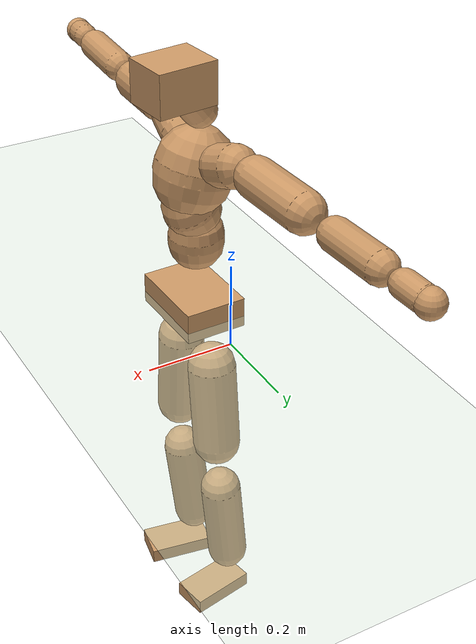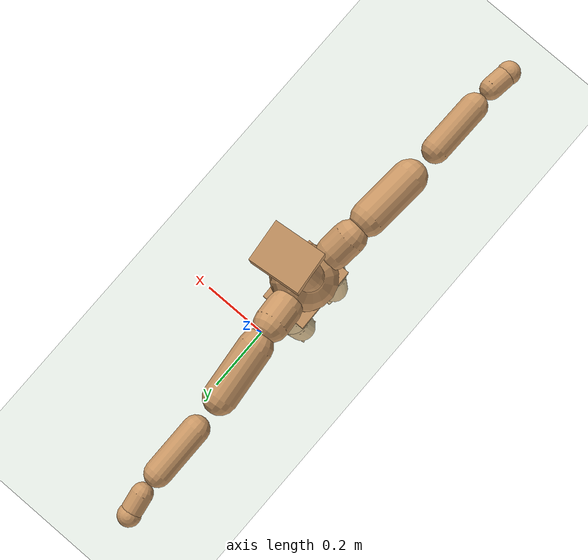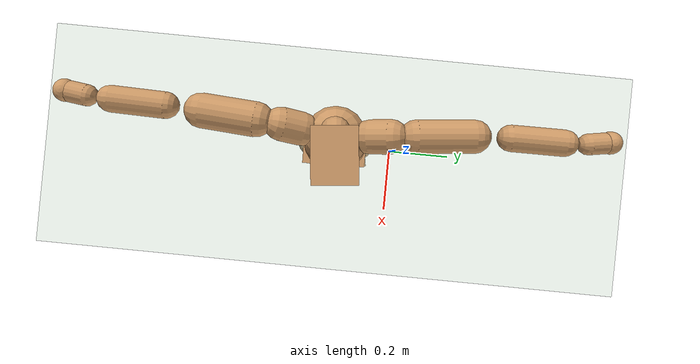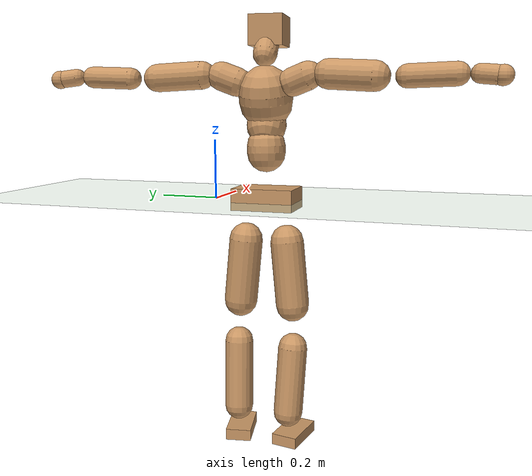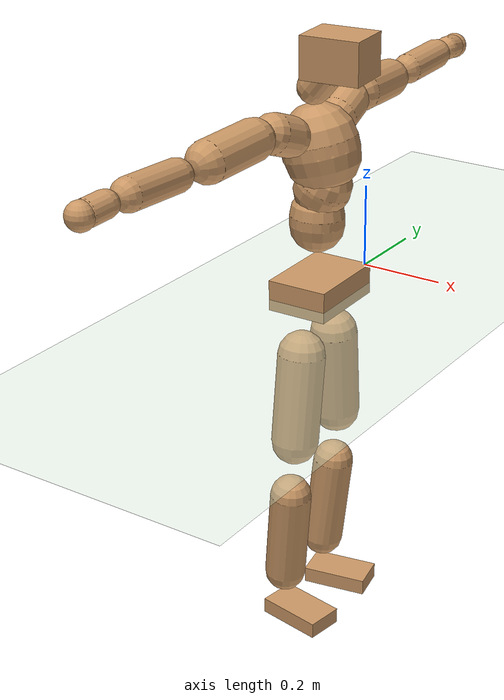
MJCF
<mujoco model="humanoid">
  <compiler coordinate="local" angle="radian"/>
  <default>
    <joint damping="0.0" armature="0.01" stiffness="0.0" limited="true"/>
    <geom conaffinity="1" condim="3" contype="7" margin="0.001" rgba="0.8 0.6 .4 1"/>
  </default>
  <asset>
    <texture type="skybox" builtin="gradient" rgb1=".4 .5 .6" rgb2="0 0 0" width="100" height="100"/>
    <texture builtin="flat" height="1278" mark="cross" markrgb="1 1 1" name="texgeom" random="0.01" rgb1="0.8 0.6 0.4" rgb2="0.8 0.6 0.4" type="cube" width="127"/>
    <texture builtin="checker" height="100" name="texplane" rgb1="0 0 0" rgb2="0.8 0.8 0.8" type="2d" width="100"/>
    <material name="MatPlane" reflectance="0.5" shininess="1" specular="1" texrepeat="60 60" texture="texplane"/>
    <material name="geom" texture="texgeom" texuniform="true"/>
  </asset>
  <worldbody>
    <light cutoff="100" diffuse="1 1 1" dir="-0 0 -1.3" directional="true" exponent="1" pos="0 0 1.3" specular=".1 .1 .1"/>
    <geom conaffinity="1" condim="3" name="floor" pos="0 0 0" rgba="0.8 0.9 0.8 1" size="100 100 .2" type="plane" material="MatPlane"/>
    <body name="Pelvis" pos="-0.0024 -0.188 0.0202">
      <freejoint name="Pelvis"/>
      <geom type="box" contype="1" conaffinity="1" density="500" pos="-0.0059 -0.0001 -0.0119" size="0.0731 0.104 0.0365" quat="0.9999 0.0000 0.0000 0.0112" name="Pelvis"/>
      <body name="L_Hip" pos="-0.0118 0.0664 -0.0836">
        <joint name="L_Hip_x" type="hinge" pos="0 0 0" axis="1 0 0" stiffness="800" damping="80" armature="0.02" range="-180.0000 180.0000"/>
        <joint name="L_Hip_y" type="hinge" pos="0 0 0" axis="0 1 0" stiffness="800" damping="80" armature="0.02" range="-180.0000 180.0000"/>
        <joint name="L_Hip_z" type="hinge" pos="0 0 0" axis="0 0 1" stiffness="800" damping="80" armature="0.02" range="-180.0000 180.0000"/>
        <geom type="capsule" contype="1" conaffinity="1" density="500" fromto="-0.0008 0.0063 -0.0722 -0.0031 0.0253 -0.2887" size="0.0569" name="L_Hip"/>
        <body name="L_Knee" pos="-0.0038 0.0316 -0.3608">
          <joint name="L_Knee_x" type="hinge" pos="0 0 0" axis="1 0 0" stiffness="800" damping="80" armature="0.02" range="-180.0000 180.0000"/>
          <joint name="L_Knee_y" type="hinge" pos="0 0 0" axis="0 1 0" stiffness="800" damping="80" armature="0.02" range="-180.0000 180.0000"/>
          <joint name="L_Knee_z" type="hinge" pos="0 0 0" axis="0 0 1" stiffness="800" damping="80" armature="0.02" range="-180.0000 180.0000"/>
          <geom type="capsule" contype="1" conaffinity="1" density="500" fromto="-0.0082 -0.0024 -0.0762 -0.0327 -0.0094 -0.3046" size="0.0493" name="L_Knee"/>
          <body name="L_Ankle" pos="-0.0409 -0.0118 -0.3808">
            <joint name="L_Ankle_x" type="hinge" pos="0 0 0" axis="1 0 0" stiffness="800" damping="80" armature="0.02" range="-180.0000 180.0000"/>
            <joint name="L_Ankle_y" type="hinge" pos="0 0 0" axis="0 1 0" stiffness="800" damping="80" armature="0.02" range="-180.0000 180.0000"/>
            <joint name="L_Ankle_z" type="hinge" pos="0 0 0" axis="0 0 1" stiffness="800" damping="80" armature="0.02" range="-180.0000 180.0000"/>
            <geom type="box" contype="1" conaffinity="1" density="500" pos="0.0556 0.0105 -0.0269" size="0.0793 0.0437 0.0194" quat="0.9956 0.0000 0.0000 0.0933" name="L_Ankle"/>
            <body name="L_Toe" pos="0.1112 0.021 -0.0537">
              <joint name="L_Toe_x" type="hinge" pos="0 0 0" axis="1 0 0" stiffness="500" damping="50" armature="0.02" range="-180.0000 180.0000"/>
              <joint name="L_Toe_y" type="hinge" pos="0 0 0" axis="0 1 0" stiffness="500" damping="50" armature="0.02" range="-180.0000 180.0000"/>
              <joint name="L_Toe_z" type="hinge" pos="0 0 0" axis="0 0 1" stiffness="500" damping="50" armature="0.02" range="-180.0000 180.0000"/>
              <geom type="box" contype="1" conaffinity="1" density="500" pos="0.0000 0.0000 0.0265" size="0.0009 0.0022 0.001" quat="0.9950 0.0000 0.0000 0.1001" name="L_Toe"/>
            </body>
          </body>
        </body>
      </body>
      <body name="R_Hip" pos="-0.0078 -0.0651 -0.0829">
        <joint name="R_Hip_x" type="hinge" pos="0 0 0" axis="1 0 0" stiffness="800" damping="80" armature="0.02" range="-180.0000 180.0000"/>
        <joint name="R_Hip_y" type="hinge" pos="0 0 0" axis="0 1 0" stiffness="800" damping="80" armature="0.02" range="-180.0000 180.0000"/>
        <joint name="R_Hip_z" type="hinge" pos="0 0 0" axis="0 0 1" stiffness="800" damping="80" armature="0.02" range="-180.0000 180.0000"/>
        <geom type="capsule" contype="1" conaffinity="1" density="500" fromto="-0.0013 -0.0075 -0.0733 -0.0051 -0.0299 -0.2932" size="0.0562" name="R_Hip"/>
        <body name="R_Knee" pos="-0.0064 -0.0374 -0.3665">
          <joint name="R_Knee_x" type="hinge" pos="0 0 0" axis="1 0 0" stiffness="800" damping="80" armature="0.02" range="-180.0000 180.0000"/>
          <joint name="R_Knee_y" type="hinge" pos="0 0 0" axis="0 1 0" stiffness="800" damping="80" armature="0.02" range="-180.0000 180.0000"/>
          <joint name="R_Knee_z" type="hinge" pos="0 0 0" axis="0 0 1" stiffness="800" damping="80" armature="0.02" range="-180.0000 180.0000"/>
          <geom type="capsule" contype="1" conaffinity="1" density="500" fromto="-0.0076 0.0029 -0.0760 -0.0305 0.0116 -0.3041" size="0.0496" name="R_Knee"/>
          <body name="R_Ankle" pos="-0.0381 0.0145 -0.3801">
            <joint name="R_Ankle_x" type="hinge" pos="0 0 0" axis="1 0 0" stiffness="800" damping="80" armature="0.02" range="-180.0000 180.0000"/>
            <joint name="R_Ankle_y" type="hinge" pos="0 0 0" axis="0 1 0" stiffness="800" damping="80" armature="0.02" range="-180.0000 180.0000"/>
            <joint name="R_Ankle_z" type="hinge" pos="0 0 0" axis="0 0 1" stiffness="800" damping="80" armature="0.02" range="-180.0000 180.0000"/>
            <geom type="box" contype="1" conaffinity="1" density="500" pos="0.0574 -0.0096 -0.0230" size="0.0807 0.0448 0.0192" quat="0.9966 0.0000 0.0000 -0.0826" name="R_Ankle"/>
            <body name="R_Toe" pos="0.1147 -0.0192 -0.046">
              <joint name="R_Toe_x" type="hinge" pos="0 0 0" axis="1 0 0" stiffness="500" damping="50" armature="0.02" range="-180.0000 180.0000"/>
              <joint name="R_Toe_y" type="hinge" pos="0 0 0" axis="0 1 0" stiffness="500" damping="50" armature="0.02" range="-180.0000 180.0000"/>
              <joint name="R_Toe_z" type="hinge" pos="0 0 0" axis="0 0 1" stiffness="500" damping="50" armature="0.02" range="-180.0000 180.0000"/>
              <geom type="box" contype="1" conaffinity="1" density="500" pos="0.0000 0.0000 0.0248" size="0.0009 0.0022 0.001" quat="0.9973 0.0000 0.0000 -0.0729" name="R_Toe"/>
            </body>
          </body>
        </body>
      </body>
      <body name="Torso" pos="-0.0155 -0.0021 0.0952">
        <joint name="Torso_x" type="hinge" pos="0 0 0" axis="1 0 0" stiffness="1000" damping="100" armature="0.02" range="-180.0000 180.0000"/>
        <joint name="Torso_y" type="hinge" pos="0 0 0" axis="0 1 0" stiffness="1000" damping="100" armature="0.02" range="-180.0000 180.0000"/>
        <joint name="Torso_z" type="hinge" pos="0 0 0" axis="0 0 1" stiffness="1000" damping="100" armature="0.02" range="-180.0000 180.0000"/>
        <geom type="capsule" contype="1" conaffinity="1" density="500" fromto="0.0013 0.0020 0.0691 0.0009 0.0014 0.0461" size="0.0642" name="Torso"/>
        <body name="Spine" pos="0.0022 0.0034 0.1152">
          <joint name="Spine_x" type="hinge" pos="0 0 0" axis="1 0 0" stiffness="1000" damping="100" armature="0.02" range="-180.0000 180.0000"/>
          <joint name="Spine_y" type="hinge" pos="0 0 0" axis="0 1 0" stiffness="1000" damping="100" armature="0.02" range="-180.0000 180.0000"/>
          <joint name="Spine_z" type="hinge" pos="0 0 0" axis="0 0 1" stiffness="1000" damping="100" armature="0.02" range="-180.0000 180.0000"/>
          <geom type="capsule" contype="1" conaffinity="1" density="500" fromto="0.0139 0.0017 0.0269 0.0093 0.0011 0.0179" size="0.066" name="Spine"/>
          <body name="Chest" pos="0.0232 0.0028 0.0448">
            <joint name="Chest_x" type="hinge" pos="0 0 0" axis="1 0 0" stiffness="1000" damping="100" armature="0.02" range="-180.0000 180.0000"/>
            <joint name="Chest_y" type="hinge" pos="0 0 0" axis="0 1 0" stiffness="1000" damping="100" armature="0.02" range="-180.0000 180.0000"/>
            <joint name="Chest_z" type="hinge" pos="0 0 0" axis="0 0 1" stiffness="1000" damping="100" armature="0.02" range="-180.0000 180.0000"/>
            <geom type="capsule" contype="1" conaffinity="1" density="500" fromto="-0.0221 -0.0010 0.0823 -0.0148 -0.0007 0.0549" size="0.0893" name="Chest"/>
            <body name="Neck" pos="-0.0439 -0.0032 0.1929">
              <joint name="Neck_x" type="hinge" pos="0 0 0" axis="1 0 0" stiffness="500" damping="50" armature="0.02" range="-180.0000 180.0000"/>
              <joint name="Neck_y" type="hinge" pos="0 0 0" axis="0 1 0" stiffness="500" damping="50" armature="0.02" range="-180.0000 180.0000"/>
              <joint name="Neck_z" type="hinge" pos="0 0 0" axis="0 0 1" stiffness="500" damping="50" armature="0.02" range="-180.0000 180.0000"/>
              <geom type="capsule" contype="1" conaffinity="1" density="500" fromto="0.0093 0.0006 0.0118 0.0374 0.0025 0.0471" size="0.0397" name="Neck"/>
              <body name="Head" pos="0.0467 0.0031 0.0589">
                <joint name="Head_x" type="hinge" pos="0 0 0" axis="1 0 0" stiffness="500" damping="50" armature="0.02" range="-180.0000 180.0000"/>
                <joint name="Head_y" type="hinge" pos="0 0 0" axis="0 1 0" stiffness="500" damping="50" armature="0.02" range="-180.0000 180.0000"/>
                <joint name="Head_z" type="hinge" pos="0 0 0" axis="0 0 1" stiffness="500" damping="50" armature="0.02" range="-180.0000 180.0000"/>
                <geom type="box" contype="1" conaffinity="1" density="500" pos="0.0244 0.0026 0.0304" size="0.0704 0.0567 0.0492" quat="0.9986 0.0000 0.0000 0.0524" name="Head"/>
              </body>
            </body>
            <body name="L_Thorax" pos="-0.0319 0.0758 0.1103">
              <joint name="L_Thorax_x" type="hinge" pos="0 0 0" axis="1 0 0" stiffness="500" damping="50" armature="0.02" range="-180.0000 180.0000"/>
              <joint name="L_Thorax_y" type="hinge" pos="0 0 0" axis="0 1 0" stiffness="500" damping="50" armature="0.02" range="-180.0000 180.0000"/>
              <joint name="L_Thorax_z" type="hinge" pos="0 0 0" axis="0 0 1" stiffness="500" damping="50" armature="0.02" range="-180.0000 180.0000"/>
              <geom type="capsule" contype="1" conaffinity="1" density="500" fromto="-0.0016 0.0176 0.0065 -0.0063 0.0705 0.0261" size="0.0478" name="L_Thorax"/>
              <body name="L_Shoulder" pos="-0.0079 0.0881 0.0326">
                <joint name="L_Shoulder_x" type="hinge" pos="0 0 0" axis="1 0 0" stiffness="500" damping="50" armature="0.02" range="-720.0000 720.0000"/>
                <joint name="L_Shoulder_y" type="hinge" pos="0 0 0" axis="0 1 0" stiffness="500" damping="50" armature="0.02" range="-720.0000 720.0000"/>
                <joint name="L_Shoulder_z" type="hinge" pos="0 0 0" axis="0 0 1" stiffness="500" damping="50" armature="0.02" range="-720.0000 720.0000"/>
                <geom type="capsule" contype="1" conaffinity="1" density="500" fromto="-0.0052 0.0515 -0.0027 -0.0208 0.2059 -0.0110" size="0.0465" name="L_Shoulder"/>
                <body name="L_Elbow" pos="-0.026 0.2573 -0.0137">
                  <joint name="L_Elbow_x" type="hinge" pos="0 0 0" axis="1 0 0" stiffness="500" damping="50" armature="0.02" range="-720.0000 720.0000"/>
                  <joint name="L_Elbow_y" type="hinge" pos="0 0 0" axis="0 1 0" stiffness="500" damping="50" armature="0.02" range="-720.0000 720.0000"/>
                  <joint name="L_Elbow_z" type="hinge" pos="0 0 0" axis="0 0 1" stiffness="500" damping="50" armature="0.02" range="-720.0000 720.0000"/>
                  <geom type="capsule" contype="1" conaffinity="1" density="500" fromto="-0.0002 0.0480 0.0019 -0.0009 0.1919 0.0074" size="0.0365" name="L_Elbow"/>
                  <body name="L_Wrist" pos="-0.0012 0.2399 0.0093">
                    <joint name="L_Wrist_x" type="hinge" pos="0 0 0" axis="1 0 0" stiffness="300" damping="30" armature="0.02" range="-180.0000 180.0000"/>
                    <joint name="L_Wrist_y" type="hinge" pos="0 0 0" axis="0 1 0" stiffness="300" damping="30" armature="0.02" range="-180.0000 180.0000"/>
                    <joint name="L_Wrist_z" type="hinge" pos="0 0 0" axis="0 0 1" stiffness="300" damping="30" armature="0.02" range="-180.0000 180.0000"/>
                    <geom type="capsule" contype="1" conaffinity="1" density="500" fromto="-0.0026 0.0156 -0.0019 -0.0103 0.0622 -0.0077" size="0.0291" name="L_Wrist"/>
                    <body name="L_Hand" pos="-0.0129 0.0778 -0.0096">
                      <joint name="L_Hand_x" type="hinge" pos="0 0 0" axis="1 0 0" stiffness="300" damping="30" armature="0.02" range="-180.0000 180.0000"/>
                      <joint name="L_Hand_y" type="hinge" pos="0 0 0" axis="0 1 0" stiffness="300" damping="30" armature="0.02" range="-180.0000 180.0000"/>
                      <joint name="L_Hand_z" type="hinge" pos="0 0 0" axis="0 0 1" stiffness="300" damping="30" armature="0.02" range="-180.0000 180.0000"/>
                      <geom type="sphere" contype="1" conaffinity="1" density="500" size="0.0312" pos="0.0000 0.0000 0.0000" name="L_Hand"/>
                    </body>
                  </body>
                </body>
              </body>
            </body>
            <body name="R_Thorax" pos="-0.035 -0.0777 0.1083">
              <joint name="R_Thorax_x" type="hinge" pos="0 0 0" axis="1 0 0" stiffness="500" damping="50" armature="0.02" range="-180.0000 180.0000"/>
              <joint name="R_Thorax_y" type="hinge" pos="0 0 0" axis="0 1 0" stiffness="500" damping="50" armature="0.02" range="-180.0000 180.0000"/>
              <joint name="R_Thorax_z" type="hinge" pos="0 0 0" axis="0 0 1" stiffness="500" damping="50" armature="0.02" range="-180.0000 180.0000"/>
              <geom type="capsule" contype="1" conaffinity="1" density="500" fromto="-0.0022 -0.0181 0.0068 -0.0087 -0.0722 0.0271" size="0.0465" name="R_Thorax"/>
              <body name="R_Shoulder" pos="-0.0108 -0.0903 0.0339">
                <joint name="R_Shoulder_x" type="hinge" pos="0 0 0" axis="1 0 0" stiffness="500" damping="50" armature="0.02" range="-720.0000 720.0000"/>
                <joint name="R_Shoulder_y" type="hinge" pos="0 0 0" axis="0 1 0" stiffness="500" damping="50" armature="0.02" range="-720.0000 720.0000"/>
                <joint name="R_Shoulder_z" type="hinge" pos="0 0 0" axis="0 0 1" stiffness="500" damping="50" armature="0.02" range="-720.0000 720.0000"/>
                <geom type="capsule" contype="1" conaffinity="1" density="500" fromto="-0.0034 -0.0496 -0.0028 -0.0136 -0.1982 -0.0111" size="0.0481" name="R_Shoulder"/>
                <body name="R_Elbow" pos="-0.017 -0.2478 -0.0139">
                  <joint name="R_Elbow_x" type="hinge" pos="0 0 0" axis="1 0 0" stiffness="500" damping="50" armature="0.02" range="-720.0000 720.0000"/>
                  <joint name="R_Elbow_y" type="hinge" pos="0 0 0" axis="0 1 0" stiffness="500" damping="50" armature="0.02" range="-720.0000 720.0000"/>
                  <joint name="R_Elbow_z" type="hinge" pos="0 0 0" axis="0 0 1" stiffness="500" damping="50" armature="0.02" range="-720.0000 720.0000"/>
                  <geom type="capsule" contype="1" conaffinity="1" density="500" fromto="-0.0009 -0.0491 0.0016 -0.0038 -0.1963 0.0063" size="0.0367" name="R_Elbow"/>
                  <body name="R_Wrist" pos="-0.0047 -0.2454 0.0078">
                    <joint name="R_Wrist_x" type="hinge" pos="0 0 0" axis="1 0 0" stiffness="300" damping="30" armature="0.02" range="-180.0000 180.0000"/>
                    <joint name="R_Wrist_y" type="hinge" pos="0 0 0" axis="0 1 0" stiffness="300" damping="30" armature="0.02" range="-180.0000 180.0000"/>
                    <joint name="R_Wrist_z" type="hinge" pos="0 0 0" axis="0 0 1" stiffness="300" damping="30" armature="0.02" range="-180.0000 180.0000"/>
                    <geom type="capsule" contype="1" conaffinity="1" density="500" fromto="-0.0020 -0.0157 -0.0015 -0.0081 -0.0626 -0.0058" size="0.0297" name="R_Wrist"/>
                    <body name="R_Hand" pos="-0.0101 -0.0783 -0.0073">
                      <joint name="R_Hand_x" type="hinge" pos="0 0 0" axis="1 0 0" stiffness="300" damping="30" armature="0.02" range="-180.0000 180.0000"/>
                      <joint name="R_Hand_y" type="hinge" pos="0 0 0" axis="0 1 0" stiffness="300" damping="30" armature="0.02" range="-180.0000 180.0000"/>
                      <joint name="R_Hand_z" type="hinge" pos="0 0 0" axis="0 0 1" stiffness="300" damping="30" armature="0.02" range="-180.0000 180.0000"/>
                      <geom type="sphere" contype="1" conaffinity="1" density="500" size="0.0313" pos="0.0000 0.0000 0.0000" name="R_Hand"/>
                    </body>
                  </body>
                </body>
              </body>
            </body>
          </body>
        </body>
      </body>
    </body>
  </worldbody>
  <actuator>
    <motor name="L_Hip_x" joint="L_Hip_x" gear="500"/>
    <motor name="L_Hip_y" joint="L_Hip_y" gear="500"/>
    <motor name="L_Hip_z" joint="L_Hip_z" gear="500"/>
    <motor name="L_Knee_x" joint="L_Knee_x" gear="500"/>
    <motor name="L_Knee_y" joint="L_Knee_y" gear="500"/>
    <motor name="L_Knee_z" joint="L_Knee_z" gear="500"/>
    <motor name="L_Ankle_x" joint="L_Ankle_x" gear="500"/>
    <motor name="L_Ankle_y" joint="L_Ankle_y" gear="500"/>
    <motor name="L_Ankle_z" joint="L_Ankle_z" gear="500"/>
    <motor name="L_Toe_x" joint="L_Toe_x" gear="500"/>
    <motor name="L_Toe_y" joint="L_Toe_y" gear="500"/>
    <motor name="L_Toe_z" joint="L_Toe_z" gear="500"/>
    <motor name="R_Hip_x" joint="R_Hip_x" gear="500"/>
    <motor name="R_Hip_y" joint="R_Hip_y" gear="500"/>
    <motor name="R_Hip_z" joint="R_Hip_z" gear="500"/>
    <motor name="R_Knee_x" joint="R_Knee_x" gear="500"/>
    <motor name="R_Knee_y" joint="R_Knee_y" gear="500"/>
    <motor name="R_Knee_z" joint="R_Knee_z" gear="500"/>
    <motor name="R_Ankle_x" joint="R_Ankle_x" gear="500"/>
    <motor name="R_Ankle_y" joint="R_Ankle_y" gear="500"/>
    <motor name="R_Ankle_z" joint="R_Ankle_z" gear="500"/>
    <motor name="R_Toe_x" joint="R_Toe_x" gear="500"/>
    <motor name="R_Toe_y" joint="R_Toe_y" gear="500"/>
    <motor name="R_Toe_z" joint="R_Toe_z" gear="500"/>
    <motor name="Torso_x" joint="Torso_x" gear="500"/>
    <motor name="Torso_y" joint="Torso_y" gear="500"/>
    <motor name="Torso_z" joint="Torso_z" gear="500"/>
    <motor name="Spine_x" joint="Spine_x" gear="500"/>
    <motor name="Spine_y" joint="Spine_y" gear="500"/>
    <motor name="Spine_z" joint="Spine_z" gear="500"/>
    <motor name="Chest_x" joint="Chest_x" gear="500"/>
    <motor name="Chest_y" joint="Chest_y" gear="500"/>
    <motor name="Chest_z" joint="Chest_z" gear="500"/>
    <motor name="Neck_x" joint="Neck_x" gear="500"/>
    <motor name="Neck_y" joint="Neck_y" gear="500"/>
    <motor name="Neck_z" joint="Neck_z" gear="500"/>
    <motor name="Head_x" joint="Head_x" gear="500"/>
    <motor name="Head_y" joint="Head_y" gear="500"/>
    <motor name="Head_z" joint="Head_z" gear="500"/>
    <motor name="L_Thorax_x" joint="L_Thorax_x" gear="500"/>
    <motor name="L_Thorax_y" joint="L_Thorax_y" gear="500"/>
    <motor name="L_Thorax_z" joint="L_Thorax_z" gear="500"/>
    <motor name="L_Shoulder_x" joint="L_Shoulder_x" gear="500"/>
    <motor name="L_Shoulder_y" joint="L_Shoulder_y" gear="500"/>
    <motor name="L_Shoulder_z" joint="L_Shoulder_z" gear="500"/>
    <motor name="L_Elbow_x" joint="L_Elbow_x" gear="500"/>
    <motor name="L_Elbow_y" joint="L_Elbow_y" gear="500"/>
    <motor name="L_Elbow_z" joint="L_Elbow_z" gear="500"/>
    <motor name="L_Wrist_x" joint="L_Wrist_x" gear="500"/>
    <motor name="L_Wrist_y" joint="L_Wrist_y" gear="500"/>
    <motor name="L_Wrist_z" joint="L_Wrist_z" gear="500"/>
    <motor name="L_Hand_x" joint="L_Hand_x" gear="500"/>
    <motor name="L_Hand_y" joint="L_Hand_y" gear="500"/>
    <motor name="L_Hand_z" joint="L_Hand_z" gear="500"/>
    <motor name="R_Thorax_x" joint="R_Thorax_x" gear="500"/>
    <motor name="R_Thorax_y" joint="R_Thorax_y" gear="500"/>
    <motor name="R_Thorax_z" joint="R_Thorax_z" gear="500"/>
    <motor name="R_Shoulder_x" joint="R_Shoulder_x" gear="500"/>
    <motor name="R_Shoulder_y" joint="R_Shoulder_y" gear="500"/>
    <motor name="R_Shoulder_z" joint="R_Shoulder_z" gear="500"/>
    <motor name="R_Elbow_x" joint="R_Elbow_x" gear="500"/>
    <motor name="R_Elbow_y" joint="R_Elbow_y" gear="500"/>
    <motor name="R_Elbow_z" joint="R_Elbow_z" gear="500"/>
    <motor name="R_Wrist_x" joint="R_Wrist_x" gear="500"/>
    <motor name="R_Wrist_y" joint="R_Wrist_y" gear="500"/>
    <motor name="R_Wrist_z" joint="R_Wrist_z" gear="500"/>
    <motor name="R_Hand_x" joint="R_Hand_x" gear="500"/>
    <motor name="R_Hand_y" joint="R_Hand_y" gear="500"/>
    <motor name="R_Hand_z" joint="R_Hand_z" gear="500"/>
  </actuator>
  <contact>
    <exclude body1="Torso" body2="Chest"/>
    <exclude body1="Head" body2="Chest"/>
    <exclude body1="R_Knee" body2="R_Toe"/>
    <exclude body1="R_Knee" body2="L_Ankle"/>
    <exclude body1="R_Knee" body2="L_Toe"/>
    <exclude body1="L_Knee" body2="L_Toe"/>
    <exclude body1="L_Knee" body2="R_Ankle"/>
    <exclude body1="L_Knee" body2="R_Toe"/>
    <exclude body1="L_Shoulder" body2="Chest"/>
    <exclude body1="R_Shoulder" body2="Chest"/>
  </contact>
  <sensor/>
  <size njmax="700" nconmax="700"/>
</mujoco>
